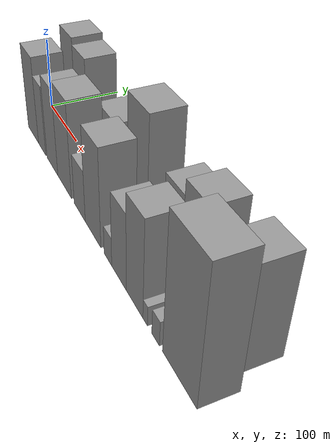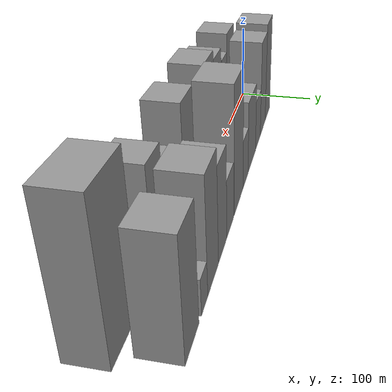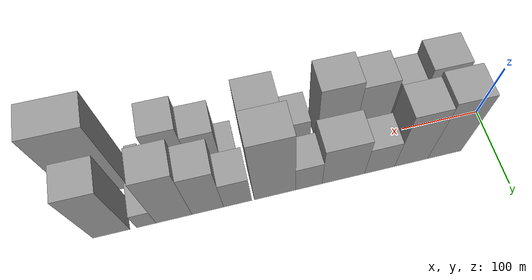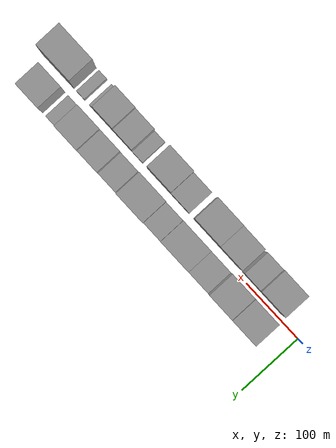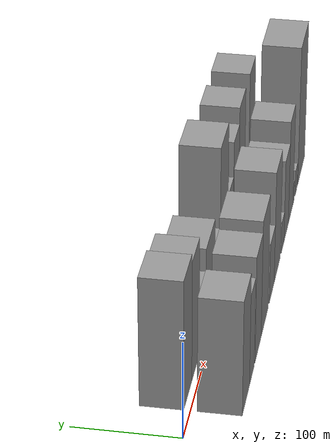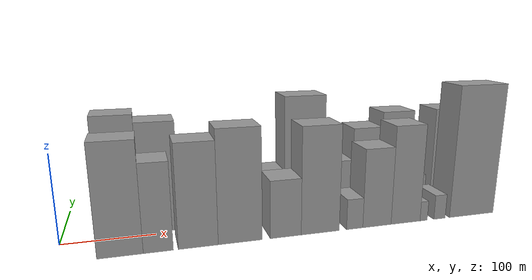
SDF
<sdf version="1.6">
 <world name="default">
  <scene>
   <sky><clouds><speed>12</speed></clouds></sky>
   <ambient>0.4 0.4 0.4 1</ambient>
   <background>0.7 0.7 0.7 1</background>
   <shadows>1</shadows>
  </scene>
  <gravity>0 0 -9.8066</gravity>
  <magnetic_field>6e-06 2.3e-05 -4.2e-05</magnetic_field>
  <physics default="0" name="default_physics" type="ode">
   <ode>
    <solver>
     <type>quick</type>
     <iters>10</iters>
     <sor>1.0</sor>
     <use_dynamic_moi_rescaling>0</use_dynamic_moi_rescaling>
    </solver>
    <constraints>
     <cfm>0</cfm>
     <erp>0.2</erp>
     <contact_max_correcting_vel>100</contact_max_correcting_vel>
     <contact_surface_layer>0.001</contact_surface_layer>
    </constraints>
   </ode>
   <max_step_size>0.004</max_step_size>
   <real_time_factor>1</real_time_factor>
   <real_time_update_rate>250</real_time_update_rate>
  </physics>
  <light name="sun" type="directional">
   <pose>0 0 10 0 0 0</pose>
   <diffuse>0.8 0.8 0.8 1</diffuse>
   <specular>0.2 0.2 0.2 1</specular>
   <attenuation>
    <range>1000</range>
    <constant>0.9</constant>
    <linear>0.01</linear>
    <quadratic>0.001</quadratic>
   </attenuation>
   <direction>-0.5 0.1 -0.9</direction>
  </light>
  <model name="building_1">
   <static>1</static>
   <pose>61.9810 26.0000 0 0.000000 0.000000 1.570796</pose>
   <link name="link">
    <pose>0 0 67.50 0 0 0</pose>
    <collision name="collision"><geometry><box><size>40.0000 43.9621 135.0000</size></box></geometry></collision>
    <visual name="visual">
     <cast_shadows>0</cast_shadows>
     <geometry><box><size>40.0000 43.9621 135.0000</size></box></geometry>
     <material>
      <script>
       <uri>model://grey_wall/materials/scripts</uri>
       <uri>model://grey_wall/materials/textures</uri>
       <name>vrc/grey_wall</name>
      </script>
     </material>
    </visual>
   </link>
  </model>
  <model name="building_2">
   <static>1</static>
   <pose>105.4015 26.0000 0 0.000000 0.000000 1.570796</pose>
   <link name="link">
    <pose>0 0 63.00 0 0 0</pose>
    <collision name="collision"><geometry><box><size>40.0000 42.8789 126.0000</size></box></geometry></collision>
    <visual name="visual">
     <cast_shadows>0</cast_shadows>
     <geometry><box><size>40.0000 42.8789 126.0000</size></box></geometry>
     <material>
      <script>
       <uri>model://grey_wall/materials/scripts</uri>
       <uri>model://grey_wall/materials/textures</uri>
       <name>vrc/grey_wall</name>
      </script>
     </material>
    </visual>
   </link>
  </model>
  <model name="building_3">
   <static>1</static>
   <pose>145.8711 26.0000 0 0.000000 0.000000 1.570796</pose>
   <link name="link">
    <pose>0 0 33.00 0 0 0</pose>
    <collision name="collision"><geometry><box><size>40.0000 38.0603 66.0000</size></box></geometry></collision>
    <visual name="visual">
     <cast_shadows>0</cast_shadows>
     <geometry><box><size>40.0000 38.0603 66.0000</size></box></geometry>
     <material>
      <script>
       <uri>model://grey_wall/materials/scripts</uri>
       <uri>model://grey_wall/materials/textures</uri>
       <name>vrc/grey_wall</name>
      </script>
     </material>
    </visual>
   </link>
  </model>
  <model name="building_4">
   <static>1</static>
   <pose>191.5454 26.0000 0 0.000000 0.000000 1.570796</pose>
   <link name="link">
    <pose>0 0 45.00 0 0 0</pose>
    <collision name="collision"><geometry><box><size>40.0000 53.2883 90.0000</size></box></geometry></collision>
    <visual name="visual">
     <cast_shadows>0</cast_shadows>
     <geometry><box><size>40.0000 53.2883 90.0000</size></box></geometry>
     <material>
      <script>
       <uri>model://grey_wall/materials/scripts</uri>
       <uri>model://grey_wall/materials/textures</uri>
       <name>vrc/grey_wall</name>
      </script>
     </material>
    </visual>
   </link>
  </model>
  <model name="building_5">
   <static>1</static>
   <pose>234.5007 26.0000 0 0.000000 0.000000 1.570796</pose>
   <link name="link">
    <pose>0 0 30.00 0 0 0</pose>
    <collision name="collision"><geometry><box><size>40.0000 32.6223 60.0000</size></box></geometry></collision>
    <visual name="visual">
     <cast_shadows>0</cast_shadows>
     <geometry><box><size>40.0000 32.6223 60.0000</size></box></geometry>
     <material>
      <script>
       <uri>model://grey_wall/materials/scripts</uri>
       <uri>model://grey_wall/materials/textures</uri>
       <name>vrc/grey_wall</name>
      </script>
     </material>
    </visual>
   </link>
  </model>
  <model name="building_6">
   <static>1</static>
   <pose>275.9102 26.0000 0 0.000000 0.000000 1.570796</pose>
   <link name="link">
    <pose>0 0 73.50 0 0 0</pose>
    <collision name="collision"><geometry><box><size>40.0000 50.1968 147.0000</size></box></geometry></collision>
    <visual name="visual">
     <cast_shadows>0</cast_shadows>
     <geometry><box><size>40.0000 50.1968 147.0000</size></box></geometry>
     <material>
      <script>
       <uri>model://grey_wall/materials/scripts</uri>
       <uri>model://grey_wall/materials/textures</uri>
       <name>vrc/grey_wall</name>
      </script>
     </material>
    </visual>
   </link>
  </model>
  <model name="building_7">
   <static>1</static>
   <pose>320.8591 26.0000 0 0.000000 0.000000 1.570796</pose>
   <link name="link">
    <pose>0 0 33.00 0 0 0</pose>
    <collision name="collision"><geometry><box><size>40.0000 33.7010 66.0000</size></box></geometry></collision>
    <visual name="visual">
     <cast_shadows>0</cast_shadows>
     <geometry><box><size>40.0000 33.7010 66.0000</size></box></geometry>
     <material>
      <script>
       <uri>model://grey_wall/materials/scripts</uri>
       <uri>model://grey_wall/materials/textures</uri>
       <name>vrc/grey_wall</name>
      </script>
     </material>
    </visual>
   </link>
  </model>
  <model name="building_8">
   <static>1</static>
   <pose>356.5244 26.0000 0 0.000000 0.000000 1.570796</pose>
   <link name="link">
    <pose>0 0 52.50 0 0 0</pose>
    <collision name="collision"><geometry><box><size>40.0000 37.6295 105.0000</size></box></geometry></collision>
    <visual name="visual">
     <cast_shadows>0</cast_shadows>
     <geometry><box><size>40.0000 37.6295 105.0000</size></box></geometry>
     <material>
      <script>
       <uri>model://grey_wall/materials/scripts</uri>
       <uri>model://grey_wall/materials/textures</uri>
       <name>vrc/grey_wall</name>
      </script>
     </material>
    </visual>
   </link>
  </model>
  <model name="building_9">
   <static>1</static>
   <pose>396.3831 26.0000 0 0.000000 0.000000 1.570796</pose>
   <link name="link">
    <pose>0 0 61.50 0 0 0</pose>
    <collision name="collision"><geometry><box><size>40.0000 42.0881 123.0000</size></box></geometry></collision>
    <visual name="visual">
     <cast_shadows>0</cast_shadows>
     <geometry><box><size>40.0000 42.0881 123.0000</size></box></geometry>
     <material>
      <script>
       <uri>model://grey_wall/materials/scripts</uri>
       <uri>model://grey_wall/materials/textures</uri>
       <name>vrc/grey_wall</name>
      </script>
     </material>
    </visual>
   </link>
  </model>
  <model name="building_10">
   <static>1</static>
   <pose>428.5450 26.0000 0 0.000000 0.000000 1.570796</pose>
   <link name="link">
    <pose>0 0 19.50 0 0 0</pose>
    <collision name="collision"><geometry><box><size>40.0000 22.2357 39.0000</size></box></geometry></collision>
    <visual name="visual">
     <cast_shadows>0</cast_shadows>
     <geometry><box><size>40.0000 22.2357 39.0000</size></box></geometry>
     <material>
      <script>
       <uri>model://grey_wall/materials/scripts</uri>
       <uri>model://grey_wall/materials/textures</uri>
       <name>vrc/grey_wall</name>
      </script>
     </material>
    </visual>
   </link>
  </model>
  <model name="building_11">
   <static>1</static>
   <pose>468.7407 26.0000 0 0.000000 0.000000 1.570796</pose>
   <link name="link">
    <pose>0 0 61.50 0 0 0</pose>
    <collision name="collision"><geometry><box><size>40.0000 42.1557 123.0000</size></box></geometry></collision>
    <visual name="visual">
     <cast_shadows>0</cast_shadows>
     <geometry><box><size>40.0000 42.1557 123.0000</size></box></geometry>
     <material>
      <script>
       <uri>model://grey_wall/materials/scripts</uri>
       <uri>model://grey_wall/materials/textures</uri>
       <name>vrc/grey_wall</name>
      </script>
     </material>
    </visual>
   </link>
  </model>
  <model name="building_12">
   <static>1</static>
   <pose>62.5650 -26.0000 0 0.000000 0.000000 1.570796</pose>
   <link name="link">
    <pose>0 0 60.00 0 0 0</pose>
    <collision name="collision"><geometry><box><size>40.0000 45.1300 120.0000</size></box></geometry></collision>
    <visual name="visual">
     <cast_shadows>0</cast_shadows>
     <geometry><box><size>40.0000 45.1300 120.0000</size></box></geometry>
     <material>
      <script>
       <uri>model://grey_wall/materials/scripts</uri>
       <uri>model://grey_wall/materials/textures</uri>
       <name>vrc/grey_wall</name>
      </script>
     </material>
    </visual>
   </link>
  </model>
  <model name="building_13">
   <static>1</static>
   <pose>100.2999 -26.0000 0 0.000000 0.000000 1.570796</pose>
   <link name="link">
    <pose>0 0 48.00 0 0 0</pose>
    <collision name="collision"><geometry><box><size>40.0000 30.3398 96.0000</size></box></geometry></collision>
    <visual name="visual">
     <cast_shadows>0</cast_shadows>
     <geometry><box><size>40.0000 30.3398 96.0000</size></box></geometry>
     <material>
      <script>
       <uri>model://grey_wall/materials/scripts</uri>
       <uri>model://grey_wall/materials/textures</uri>
       <name>vrc/grey_wall</name>
      </script>
     </material>
    </visual>
   </link>
  </model>
  <model name="building_14">
   <static>1</static>
   <pose>141.3969 -26.0000 0 0.000000 0.000000 1.570796</pose>
   <link name="link">
    <pose>0 0 57.00 0 0 0</pose>
    <collision name="collision"><geometry><box><size>40.0000 41.8542 114.0000</size></box></geometry></collision>
    <visual name="visual">
     <cast_shadows>0</cast_shadows>
     <geometry><box><size>40.0000 41.8542 114.0000</size></box></geometry>
     <material>
      <script>
       <uri>model://grey_wall/materials/scripts</uri>
       <uri>model://grey_wall/materials/textures</uri>
       <name>vrc/grey_wall</name>
      </script>
     </material>
    </visual>
   </link>
  </model>
  <model name="building_15">
   <static>1</static>
   <pose>186.4607 -26.0000 0 0.000000 0.000000 1.570796</pose>
   <link name="link">
    <pose>0 0 63.00 0 0 0</pose>
    <collision name="collision"><geometry><box><size>40.0000 48.2736 126.0000</size></box></geometry></collision>
    <visual name="visual">
     <cast_shadows>0</cast_shadows>
     <geometry><box><size>40.0000 48.2736 126.0000</size></box></geometry>
     <material>
      <script>
       <uri>model://grey_wall/materials/scripts</uri>
       <uri>model://grey_wall/materials/textures</uri>
       <name>vrc/grey_wall</name>
      </script>
     </material>
    </visual>
   </link>
  </model>
  <model name="building_16">
   <static>1</static>
   <pose>237.3109 -26.0000 0 0.000000 0.000000 1.570796</pose>
   <link name="link">
    <pose>0 0 33.00 0 0 0</pose>
    <collision name="collision"><geometry><box><size>40.0000 35.4268 66.0000</size></box></geometry></collision>
    <visual name="visual">
     <cast_shadows>0</cast_shadows>
     <geometry><box><size>40.0000 35.4268 66.0000</size></box></geometry>
     <material>
      <script>
       <uri>model://grey_wall/materials/scripts</uri>
       <uri>model://grey_wall/materials/textures</uri>
       <name>vrc/grey_wall</name>
      </script>
     </material>
    </visual>
   </link>
  </model>
  <model name="building_17">
   <static>1</static>
   <pose>277.6862 -26.0000 0 0.000000 0.000000 1.570796</pose>
   <link name="link">
    <pose>0 0 61.50 0 0 0</pose>
    <collision name="collision"><geometry><box><size>40.0000 45.3237 123.0000</size></box></geometry></collision>
    <visual name="visual">
     <cast_shadows>0</cast_shadows>
     <geometry><box><size>40.0000 45.3237 123.0000</size></box></geometry>
     <material>
      <script>
       <uri>model://grey_wall/materials/scripts</uri>
       <uri>model://grey_wall/materials/textures</uri>
       <name>vrc/grey_wall</name>
      </script>
     </material>
    </visual>
   </link>
  </model>
  <model name="building_18">
   <static>1</static>
   <pose>319.3739 -26.0000 0 0.000000 0.000000 1.570796</pose>
   <link name="link">
    <pose>0 0 18.00 0 0 0</pose>
    <collision name="collision"><geometry><box><size>40.0000 20.0516 36.0000</size></box></geometry></collision>
    <visual name="visual">
     <cast_shadows>0</cast_shadows>
     <geometry><box><size>40.0000 20.0516 36.0000</size></box></geometry>
     <material>
      <script>
       <uri>model://grey_wall/materials/scripts</uri>
       <uri>model://grey_wall/materials/textures</uri>
       <name>vrc/grey_wall</name>
      </script>
     </material>
    </visual>
   </link>
  </model>
  <model name="building_19">
   <static>1</static>
   <pose>347.3549 -26.0000 0 0.000000 0.000000 1.570796</pose>
   <link name="link">
    <pose>0 0 46.50 0 0 0</pose>
    <collision name="collision"><geometry><box><size>40.0000 35.9105 93.0000</size></box></geometry></collision>
    <visual name="visual">
     <cast_shadows>0</cast_shadows>
     <geometry><box><size>40.0000 35.9105 93.0000</size></box></geometry>
     <material>
      <script>
       <uri>model://grey_wall/materials/scripts</uri>
       <uri>model://grey_wall/materials/textures</uri>
       <name>vrc/grey_wall</name>
      </script>
     </material>
    </visual>
   </link>
  </model>
  <model name="building_20">
   <static>1</static>
   <pose>384.3169 -26.0000 0 0.000000 0.000000 1.570796</pose>
   <link name="link">
    <pose>0 0 58.50 0 0 0</pose>
    <collision name="collision"><geometry><box><size>40.0000 38.0135 117.0000</size></box></geometry></collision>
    <visual name="visual">
     <cast_shadows>0</cast_shadows>
     <geometry><box><size>40.0000 38.0135 117.0000</size></box></geometry>
     <material>
      <script>
       <uri>model://grey_wall/materials/scripts</uri>
       <uri>model://grey_wall/materials/textures</uri>
       <name>vrc/grey_wall</name>
      </script>
     </material>
    </visual>
   </link>
  </model>
  <model name="building_21">
   <static>1</static>
   <pose>408.1964 -26.0000 0 0.000000 0.000000 1.570796</pose>
   <link name="link">
    <pose>0 0 12.00 0 0 0</pose>
    <collision name="collision"><geometry><box><size>40.0000 9.7456 24.0000</size></box></geometry></collision>
    <visual name="visual">
     <cast_shadows>0</cast_shadows>
     <geometry><box><size>40.0000 9.7456 24.0000</size></box></geometry>
     <material>
      <script>
       <uri>model://grey_wall/materials/scripts</uri>
       <uri>model://grey_wall/materials/textures</uri>
       <name>vrc/grey_wall</name>
      </script>
     </material>
    </visual>
   </link>
  </model>
  <model name="building_22">
   <static>1</static>
   <pose>429.7135 -26.0000 0 0.000000 0.000000 1.570796</pose>
   <link name="link">
    <pose>0 0 15.00 0 0 0</pose>
    <collision name="collision"><geometry><box><size>40.0000 15.2887 30.0000</size></box></geometry></collision>
    <visual name="visual">
     <cast_shadows>0</cast_shadows>
     <geometry><box><size>40.0000 15.2887 30.0000</size></box></geometry>
     <material>
      <script>
       <uri>model://grey_wall/materials/scripts</uri>
       <uri>model://grey_wall/materials/textures</uri>
       <name>vrc/grey_wall</name>
      </script>
     </material>
    </visual>
   </link>
  </model>
  <model name="building_23">
   <static>1</static>
   <pose>474.1459 -26.0000 0 0.000000 0.000000 1.570796</pose>
   <link name="link">
    <pose>0 0 79.50 0 0 0</pose>
    <collision name="collision"><geometry><box><size>40.0000 61.5761 159.0000</size></box></geometry></collision>
    <visual name="visual">
     <cast_shadows>0</cast_shadows>
     <geometry><box><size>40.0000 61.5761 159.0000</size></box></geometry>
     <material>
      <script>
       <uri>model://grey_wall/materials/scripts</uri>
       <uri>model://grey_wall/materials/textures</uri>
       <name>vrc/grey_wall</name>
      </script>
     </material>
    </visual>
   </link>
  </model>
 </world>
</sdf>
